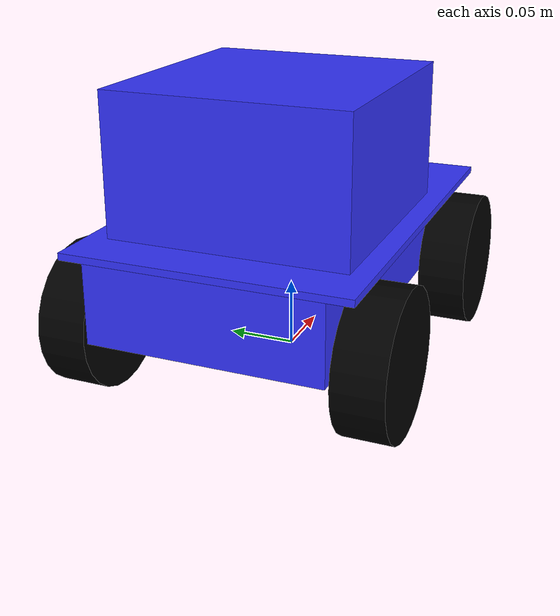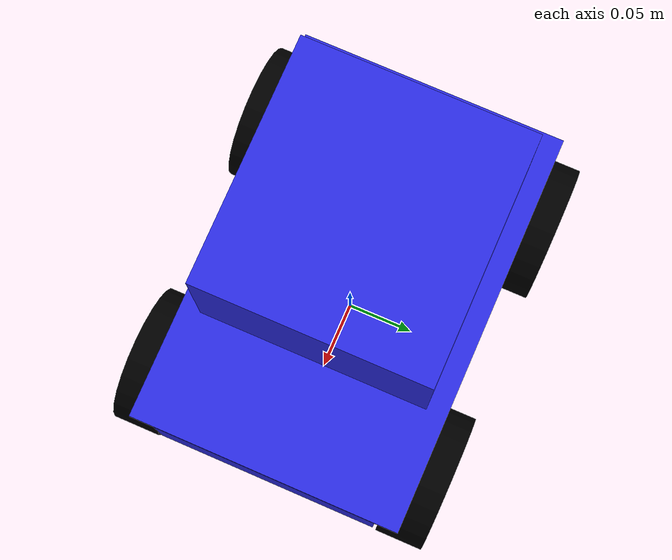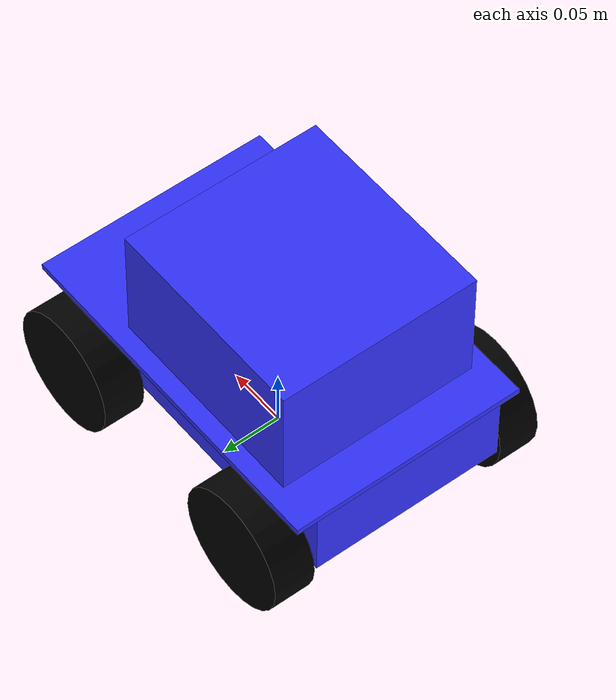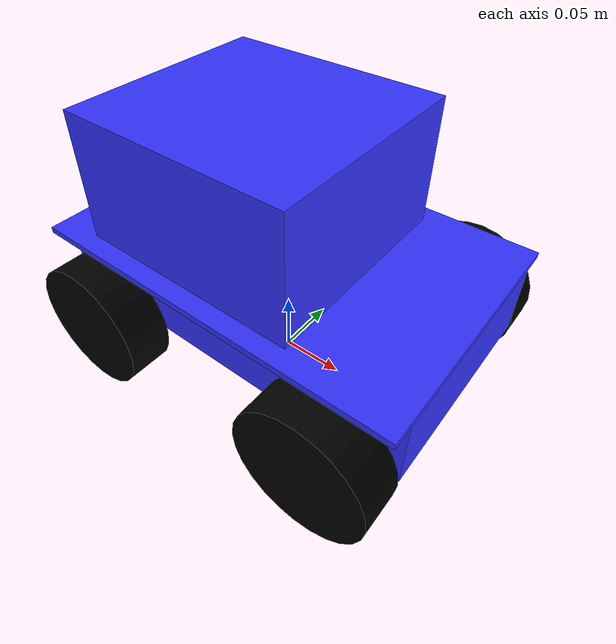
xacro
<?xml version="1.0"?>
<robot xmlns:xacro="http://www.ros.org/wiki/xacro">

    <!-- MATERIAL -->
    <material name="blue">
        <color rgba="0.200 0.200 1.000 1.000" />
    </material>

    <material name="black">
        <color rgba="0.000 0.000 0.000 1.000" />
    </material>

    <!-- BASE -->
    <link name="base_footprint">
    </link>

    <joint name="base_joint" type="fixed">
        <parent link="base_footprint"/>
        <child link="base_link"/>
        <origin xyz="0 0 0.05"/>
    </joint>

    <!-- LINK -->
    <link name="base_link">
        <visual>
            <origin xyz="0 0 0.028" rpy="0 0 0" />
            <geometry>
                <box size="0.3 0.165 0.056" />
            </geometry>
            <material name="blue" />
        </visual>
        <inertial>
            <origin xyz="0 0 0.028" rpy="0 0 0" />
            <mass value="1.0" />
            <inertia ixx="${(1.0/12) * (0.056*0.056 + 0.3*0.3)}" ixy="0" ixz="0"
                     iyy="${(1.0/12) * (0.165*0.165 + 0.3*0.3)}" iyz="0"
                     izz="${(1.0/12) * (0.165*0.165 + 0.056*0.056)}" />
        </inertial>
        <collision>
            <origin xyz="0 0 0.028" rpy="0 0 0" />
            <geometry>
                <box size="0.3 0.165 0.056" />
            </geometry>
        </collision>
    </link>

    <gazebo reference="base_link">
        <material>Gazebo/Blue</material>
    </gazebo>

    <link name="mid_link">
        <visual>
            <origin xyz="0 0 0.0025" rpy="0 0 0" />
            <geometry>
                <box size="0.3 0.2 0.005" />
            </geometry>
            <material name="blue" />
        </visual>
        <inertial>
            <origin xyz="0 0 0.0025" rpy="0 0 0" />
            <mass value="0.5" />
            <inertia ixx="${(0.5/12) * (0.005*0.005 + 0.3*0.3)}" ixy="0" ixz="0"
                     iyy="${(0.5/12) * (0.2*0.2 + 0.3*0.3)}" iyz="0"
                     izz="${(0.5/12) * (0.2*0.2 + 0.005*0.005)}" />
        </inertial>
        <collision>
            <origin xyz="0 0 0.0025" rpy="0 0 0"/>
            <geometry>
                <box size="0.3 0.2 0.005"/>
            </geometry>
        </collision>
    </link>

    <gazebo reference="mid_link">
        <material>Gazebo/Blue</material>
    </gazebo>

    <link name="top_link">
        <visual>
            <origin xyz="0 0 0.05" rpy="0 0 0"/>
            <geometry>
                <box size="0.18 0.17 0.1"/>
            </geometry>
            <material name="blue"/>
        </visual>
        <inertial>
            <origin xyz="0 0 0.05" rpy="0 0 0" />
            <mass value="2.0" />
            <inertia ixx="${(2.0/12) * (0.1*0.1 + 0.18*0.18)}" ixy="0" ixz="0"
                     iyy="${(2.0/12) * (0.17*0.17 + 0.18*0.18)}" iyz="0"
                     izz="${(2.0/12) * (0.17*0.17 + 0.1*0.1)}" />
        </inertial>
        <collision>
            <origin xyz="0 0 0.05" rpy="0 0 0"/>
            <geometry>
                <box size="0.18 0.17 0.1"/>
            </geometry>
        </collision>
    </link>

    <gazebo reference="top_link">
        <material>Gazebo/Blue</material>
    </gazebo>

    <xacro:macro name="wheel_link" params="prefix">
        <link name="${prefix}_wheel_link">
            <visual>
                <origin xyz="0 0 0" rpy="${pi / 2.0} 0 0" />
                <geometry>
                    <cylinder radius="0.0508" length="0.035" />
                </geometry>
                <material name="black" />
            </visual>
            <inertial>
                <origin xyz="0 0 0" rpy="${pi / 2.0} 0 0" />
                <mass value="0.2"/>
                <inertia ixx="${(0.2/12) * (3*0.0508*0.0508 + 0.035*0.035)}" ixy="0" ixz="0"
                         iyy="${(0.2/12) * (3*0.0508*0.0508 + 0.035*0.035)}" iyz="0"
                         izz="${(0.2/2) * (0.0508*0.0508)}" />
            </inertial>
            <collision>
                <origin xyz="0 0 0" rpy="${pi / 2.0} 0 0" />
                <geometry>
                    <cylinder radius="0.0508" length="0.035" />
                </geometry>
            </collision>
        </link>
    </xacro:macro>

    <xacro:wheel_link prefix="rr" />
    <xacro:wheel_link prefix="rl" />
    <xacro:wheel_link prefix="fr" />
    <xacro:wheel_link prefix="fl" />

    <gazebo reference="rr_wheel_link">
        <material>Gazebo/Black</material>
    </gazebo>

    <gazebo reference="rl_wheel_link">
        <material>Gazebo/Black</material>
    </gazebo>

    <gazebo reference="fr_wheel_link">
        <material>Gazebo/Black</material>
    </gazebo>

    <gazebo reference="fl_wheel_link">
        <material>Gazebo/Black</material>
    </gazebo>

    <!-- JOINT -->
    <joint name="base_mid" type="fixed">
        <parent link="base_link"/>
        <child link="mid_link"/>
        <origin xyz="0 0 0.056" rpy="0 0 0"/>
    </joint>

    <joint name="mid_top" type="fixed">
        <parent link="mid_link"/>
        <child link="top_link"/>
        <origin xyz="-0.025 0 0.005" rpy="0 0 0"/>
    </joint>

    <joint name="rr_wheel_joint" type="continuous">
        <parent link="base_link"/>
        <child link="rr_wheel_link"/>
        <origin xyz="-0.1 -0.1025 0" rpy="0 0 0"/>
        <axis xyz="0 1 0" />
    </joint>

    <joint name="rl_wheel_joint" type="continuous">
        <parent link="base_link"/>
        <child link="rl_wheel_link"/>
        <origin xyz="-0.1 0.1025 0" rpy="0 0 0"/>
        <axis xyz="0 1 0" />
    </joint>

    <!-- FRONT WHEEL JOINTS (passive, mimic rear wheels) -->
    <joint name="fr_wheel_joint" type="continuous">
        <parent link="base_link"/>
        <child link="fr_wheel_link"/>
        <origin xyz="0.1 -0.1025 0" rpy="0 0 0"/>
        <axis xyz="0 1 0" />
    </joint>

    <joint name="fl_wheel_joint" type="continuous">
        <parent link="base_link"/>
        <child link="fl_wheel_link"/>
        <origin xyz="0.1 0.1025 0" rpy="0 0 0"/>
        <axis xyz="0 1 0" />
    </joint>

</robot>
